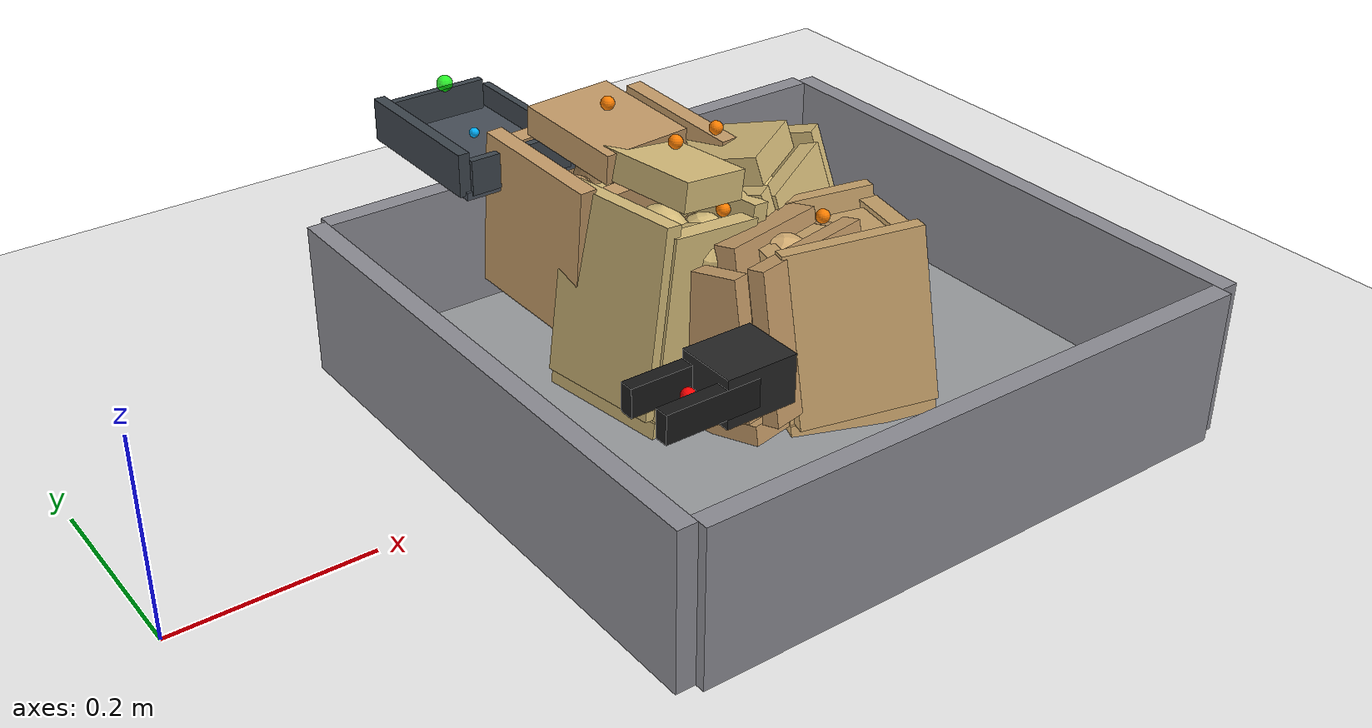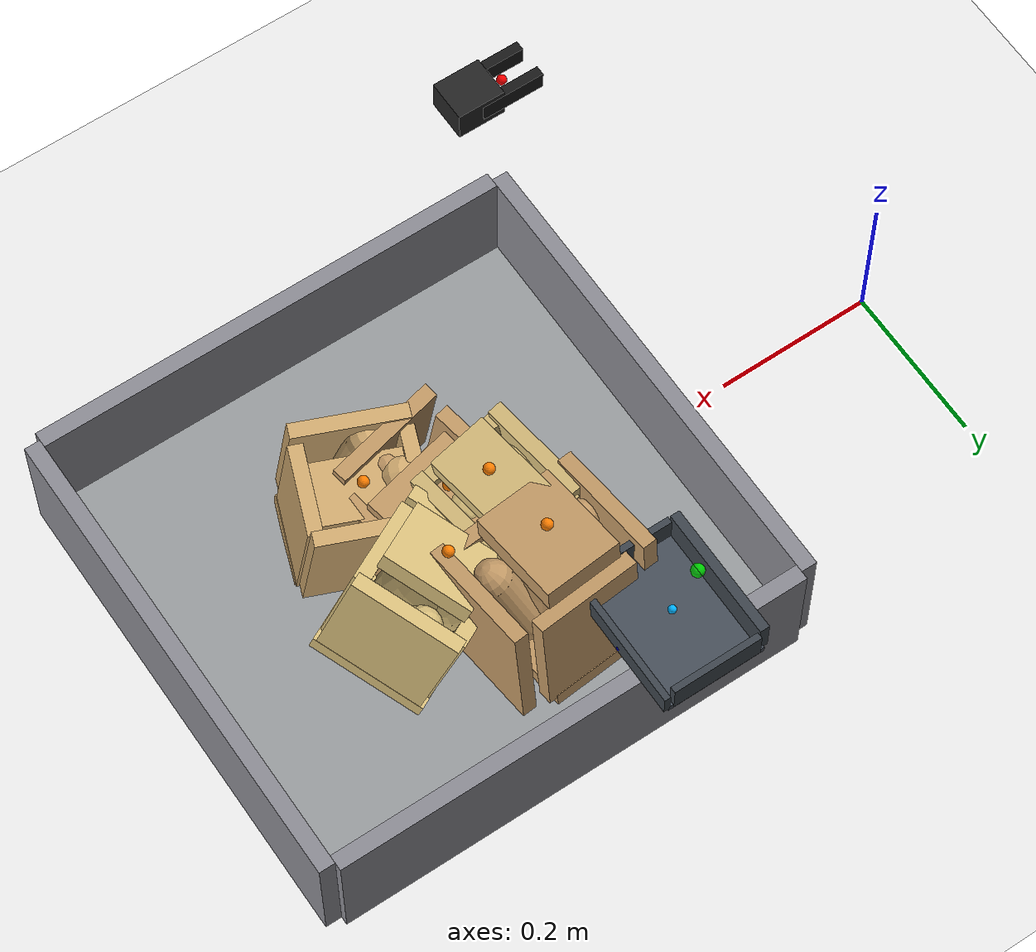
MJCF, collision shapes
<mujoco model="side_bulged_unstable_partially_buried_ep0_try0">
  <compiler angle="radian" coordinate="local" inertiafromgeom="true" meshdir="D:/Michael/2025/01.Research/01.Parceldetection/16.Pybullet/bullet3-master (1)/bullet3-master/examples/pybullet/examples/DeformableTest/Sackcodex2/object"/>
  <option timestep="0.002" gravity="0 0 -9.81" integrator="implicitfast" iterations="100" tolerance="1e-8"/>
  <size memory="768M" nconmax="12000"/>

  <visual>
    <global azimuth="128" elevation="-20"/>
    <headlight ambient="0.34 0.34 0.34" diffuse="0.78 0.78 0.78" specular="0.15 0.15 0.15"/>
    <rgba haze="0.11 0.13 0.18 1"/>
  </visual>

  <default>
    <geom condim="4" friction="1.15 0.03 0.01" margin="0.003" solimp="0.93 0.98 0.003" solref="0.012 1"/>
    <joint damping="1.2" armature="0.002"/>
    <position kp="2500" forcelimited="true" forcerange="-420 420"/>
    <motor ctrllimited="true"/>
  </default>

  <asset>
    <mesh name="sack_0_visual_mesh" file="sack9.obj" scale="0.0769 0.0769 0.0821"/>
    <mesh name="sack_1_visual_mesh" file="sack.obj" scale="0.0708 0.0708 0.0721"/>
    <mesh name="sack_2_visual_mesh" file="sack9.obj" scale="0.0695 0.0695 0.0729"/>
    <mesh name="sack_3_visual_mesh" file="sack9.obj" scale="0.0719 0.0719 0.0762"/>
    <mesh name="sack_4_visual_mesh" file="sack6Apply.obj" scale="0.0739 0.0739 0.0789"/>
  </asset>

  <worldbody>
    <light name="key" pos="0.85 0.15 1.8" dir="-0.2 -0.1 -1" directional="true"/>
    <geom name="floor" type="plane" size="2 2 0.1" rgba="0.93 0.93 0.93 1"/>
    <geom name="work_pad" type="box" pos="0.62 0 0.012" size="0.30 0.30 0.012" rgba="0.60 0.61 0.62 1" friction="1.4 0.05 0.01"/>
    <geom name="corral_front" type="box" pos="0.93 0.00 0.08" size="0.010 0.30 0.08" rgba="0.55 0.55 0.58 0.22" friction="1.0 0.03 0.01"/>
    <geom name="corral_back" type="box" pos="0.31 0.00 0.08" size="0.010 0.30 0.08" rgba="0.55 0.55 0.58 0.18" friction="1.0 0.03 0.01"/>
    <geom name="corral_left" type="box" pos="0.62 0.30 0.08" size="0.30 0.010 0.08" rgba="0.55 0.55 0.58 0.14" friction="1.0 0.03 0.01"/>
    <geom name="corral_right" type="box" pos="0.62 -0.30 0.08" size="0.30 0.010 0.08" rgba="0.55 0.55 0.58 0.14" friction="1.0 0.03 0.01"/>
    <camera name="overview" pos="1.22 0.00 0.92" xyaxes="0 1 0 -0.46 0 0.88"/>

    <body name="gripper_mocap" mocap="true" pos="0.36 -0.33 0.30" quat="0.707107 0 -0.707107 0"/>
    <body name="scoop_mocap" mocap="true" pos="0.42 0.28 0.20" quat="1 0 0 0"/>

    <body name="gripper_ctrl_base" pos="0.36 -0.33 0.30">
      <inertial pos="0 0 0" mass="0.001" diaginertia="1e-6 1e-6 1e-6"/>
      <joint name="gripper_ctrl_x" type="slide" axis="1 0 0" limited="true" range="0.20 1.00"/>
      <body name="gripper_ctrl_y_body">
        <inertial pos="0 0 0" mass="0.001" diaginertia="1e-6 1e-6 1e-6"/>
        <joint name="gripper_ctrl_y" type="slide" axis="0 1 0" limited="true" range="-0.60 0.60"/>
        <body name="gripper_ctrl_z_body">
          <inertial pos="0 0 0" mass="0.001" diaginertia="1e-6 1e-6 1e-6"/>
          <joint name="gripper_ctrl_z" type="slide" axis="0 0 1" limited="true" range="0.04 0.70"/>
          <body name="gripper_ctrl_yaw_body">
            <inertial pos="0 0 0" mass="0.001" diaginertia="1e-6 1e-6 1e-6"/>
            <joint name="gripper_ctrl_yaw" type="hinge" axis="0 0 1" limited="true" range="-3.1416 3.1416"/>
            <body name="gripper_ctrl_pitch_body">
              <inertial pos="0 0 0" mass="0.001" diaginertia="1e-6 1e-6 1e-6"/>
              <joint name="gripper_ctrl_pitch" type="hinge" axis="0 1 0" limited="true" range="-3.1416 3.1416"/>
              <body name="gripper_ctrl_roll_body">
                <inertial pos="0 0 0" mass="0.001" diaginertia="1e-6 1e-6 1e-6"/>
                <joint name="gripper_ctrl_roll" type="hinge" axis="1 0 0" limited="true" range="-3.1416 3.1416"/>
              </body>
            </body>
          </body>
        </body>
      </body>
    </body>

    <body name="scoop_ctrl_base" pos="0.42 0.28 0.20">
      <inertial pos="0 0 0" mass="0.001" diaginertia="1e-6 1e-6 1e-6"/>
      <joint name="scoop_ctrl_x" type="slide" axis="1 0 0" limited="true" range="0.20 1.00"/>
      <body name="scoop_ctrl_y_body">
        <inertial pos="0 0 0" mass="0.001" diaginertia="1e-6 1e-6 1e-6"/>
        <joint name="scoop_ctrl_y" type="slide" axis="0 1 0" limited="true" range="-0.60 0.60"/>
        <body name="scoop_ctrl_z_body">
          <inertial pos="0 0 0" mass="0.001" diaginertia="1e-6 1e-6 1e-6"/>
          <joint name="scoop_ctrl_z" type="slide" axis="0 0 1" limited="true" range="0.04 0.70"/>
          <body name="scoop_ctrl_yaw_body">
            <inertial pos="0 0 0" mass="0.001" diaginertia="1e-6 1e-6 1e-6"/>
            <joint name="scoop_ctrl_yaw" type="hinge" axis="0 0 1" limited="true" range="-3.1416 3.1416"/>
            <body name="scoop_ctrl_pitch_body">
              <inertial pos="0 0 0" mass="0.001" diaginertia="1e-6 1e-6 1e-6"/>
              <joint name="scoop_ctrl_pitch" type="hinge" axis="0 1 0" limited="true" range="-3.1416 3.1416"/>
              <body name="scoop_ctrl_roll_body">
                <inertial pos="0 0 0" mass="0.001" diaginertia="1e-6 1e-6 1e-6"/>
                <joint name="scoop_ctrl_roll" type="hinge" axis="1 0 0" limited="true" range="-3.1416 3.1416"/>
              </body>
            </body>
          </body>
        </body>
      </body>
    </body>

    <body name="gripper_tool" pos="0.36 -0.33 0.30" quat="0.707107 0 -0.707107 0">
      <freejoint name="gripper_tool_free"/>
      <inertial pos="0 0 0.04" mass="0.08" diaginertia="0.0002 0.0002 0.0002"/>
      <geom name="gripper_palm" type="box" pos="0 0 0.030" size="0.020 0.026 0.030" rgba="0.14 0.14 0.14 1"/>
      <body name="left_finger_body" pos="0 0 0.072">
        <joint name="left_finger_slide" type="slide" axis="0 1 0" limited="true" range="0.010 0.040" damping="12"/>
        <geom name="left_finger_geom" type="box" pos="0 0.020 0" size="0.012 0.006 0.040" rgba="0.10 0.10 0.10 1" friction="2.2 0.05 0.01"/>
      </body>
      <body name="right_finger_body" pos="0 0 0.072">
        <joint name="right_finger_slide" type="slide" axis="0 -1 0" limited="true" range="0.010 0.040" damping="12"/>
        <geom name="right_finger_geom" type="box" pos="0 -0.020 0" size="0.012 0.006 0.040" rgba="0.10 0.10 0.10 1" friction="2.2 0.05 0.01"/>
      </body>
      <site name="gripper_pinch_site" pos="0 0 0.074" size="0.006" rgba="1 0 0 1"/>
    </body>

    <body name="scoop_tool" pos="0.42 0.28 0.20" quat="1 0 0 0">
      <freejoint name="scoop_tool_free"/>
      <inertial pos="0 0 0.02" mass="0.10" diaginertia="0.0003 0.0003 0.0003"/>
      <geom name="scoop_plate" type="box" pos="0.062 0 0" size="0.062 0.085 0.004" rgba="0.28 0.31 0.35 1" friction="1.7 0.05 0.01"/>
      <geom name="scoop_lip" type="box" pos="0.126 0 0.014" size="0.004 0.085 0.014" rgba="0.24 0.27 0.30 1" friction="1.7 0.05 0.01"/>
      <geom name="scoop_left_rail" type="box" pos="0.062 0.082 0.018" size="0.056 0.004 0.018" rgba="0.24 0.27 0.30 1"/>
      <geom name="scoop_right_rail" type="box" pos="0.062 -0.082 0.018" size="0.056 0.004 0.018" rgba="0.24 0.27 0.30 1"/>
      <geom name="scoop_backstop" type="box" pos="0.000 0 0.022" size="0.006 0.082 0.022" rgba="0.24 0.27 0.30 1"/>
      <site name="scoop_tip_site" pos="0.126 0 0.005" size="0.005" rgba="0 0 1 1"/>
      <site name="scoop_center_site" pos="0.060 0 0.020" size="0.005" rgba="0 0.7 1 1"/>
      <site name="score_overlay_site" pos="0.030 0 0.080" size="0.008" rgba="0 1 0 0.8"/>
    </body>

    <body name="sack_0" pos="0.5937 -0.0050 0.1061" euler="-0.1741 -0.0154 0.2225">
      <freejoint name="sack_0_free"/>

      <geom name="sack_0_visual" type="mesh" mesh="sack_0_visual_mesh" rgba="0.760 0.600 0.400 0.92" contype="0" conaffinity="0"/>
      <site name="sack_0_center_site" pos="0 0 0.000" size="0.006" rgba="0 1 0 1"/>
      <site name="sack_0_top_site" pos="0 0.0060 0.1053" size="0.007" rgba="1 0.5 0 1"/>
      <site name="sack_0_side_site" pos="0.0140 0.0586 0.018" size="0.007" rgba="1 0.8 0 1"/>

      <geom name="sack_0_core_geom" type="ellipsoid" pos="0 0 0.0058" size="0.0451 0.0355 0.0795" mass="0.9458" rgba="0.760 0.600 0.400 0.12" friction="1.0 0.03 0.01"/>
      <geom name="sack_0_core_front" type="capsule" fromto="-0.0060 0 -0.0200 0.0590 0 0.0600" size="0.0309" mass="0.2252" rgba="0.760 0.600 0.400 0.10"/>
      <geom name="sack_0_core_left" type="capsule" fromto="-0.008 0.0426 -0.010 0.018 0.0606 0.060" size="0.0242" mass="0.4054" rgba="0.760 0.600 0.400 0.10"/>
      <geom name="sack_0_core_right" type="capsule" fromto="-0.006 -0.0426 -0.008 0.020 -0.0626 0.054" size="0.0223" mass="0.4054" rgba="0.760 0.600 0.400 0.10"/>

      <body name="sack_0_bottom_support_proxy_body" pos="0 -0.0085 -0.0783">
        <joint name="sack_0_bottom_x" type="slide" axis="1 0 0" limited="true" range="-0.012 0.012" damping="18" stiffness="487.6"/>
        <joint name="sack_0_bottom_y" type="slide" axis="0 1 0" limited="true" range="-0.012 0.012" damping="18" stiffness="487.6"/>
        <joint name="sack_0_bottom_z" type="slide" axis="0 0 1" limited="true" range="-0.008 0.020" damping="24" stiffness="600.4"/>
        <geom name="sack_0_bottom_support_proxy" type="box" size="0.0759 0.0646 0.0100" mass="0.1802" rgba="0.760 0.600 0.400 0.34" friction="1.55 0.05 0.01"/>
      </body>

      <body name="sack_0_top_grasp_proxy_body" pos="0.0140 0.0060 0.0753">
        <joint name="sack_0_top_x" type="slide" axis="1 0 0" limited="true" range="-0.018 0.018" damping="12" stiffness="187.4"/>
        <joint name="sack_0_top_y" type="slide" axis="0 1 0" limited="true" range="-0.018 0.018" damping="12" stiffness="187.4"/>
        <joint name="sack_0_top_z" type="slide" axis="0 0 1" limited="true" range="-0.040 0.010" damping="14" stiffness="139.2"/>
        <geom name="sack_0_top_grasp_proxy" type="box" size="0.0599 0.0486 0.0150" mass="0.1351" rgba="0.760 0.600 0.400 0.26" friction="2.2 0.05 0.01"/>
      </body>

      <body name="sack_0_left_side_proxy_body" pos="0 0.0912 0.010">
        <joint name="sack_0_left_side_slide" type="slide" axis="0 -1 0" limited="true" range="-0.028 0.016" damping="16" stiffness="247.8"/>
        <geom name="sack_0_left_side_proxy" type="box" size="0.0719 0.0090 0.0763" mass="0.1351" rgba="0.760 0.600 0.400 0.24"/>
      </body>

      <body name="sack_0_right_side_proxy_body" pos="0 -0.0872 0.010">
        <joint name="sack_0_right_side_slide" type="slide" axis="0 1 0" limited="true" range="-0.028 0.016" damping="16" stiffness="229.6"/>
        <geom name="sack_0_right_side_proxy" type="box" size="0.0719 0.0090 0.0763" mass="0.1351" rgba="0.760 0.600 0.400 0.24"/>
      </body>

      <body name="sack_0_front_proxy_body" pos="0.0799 0 0.000">
        <joint name="sack_0_front_slide" type="slide" axis="-1 0 0" limited="true" range="-0.022 0.012" damping="15" stiffness="233.8"/>
        <geom name="sack_0_front_support_proxy" type="box" size="0.0090 0.0646 0.0743" mass="0.1126" rgba="0.760 0.600 0.400 0.22"/>
      </body>

      <body name="sack_0_back_proxy_body" pos="-0.0659 0 0.000">
        <joint name="sack_0_back_slide" type="slide" axis="1 0 0" limited="true" range="-0.022 0.012" damping="15" stiffness="215.6"/>
        <geom name="sack_0_back_support_proxy" type="box" size="0.0090 0.0646 0.0743" mass="0.1126" rgba="0.760 0.600 0.400 0.22"/>
      </body>

      <body name="sack_0_shape_proxy_body" pos="0.0084 0.0346 0.0308">
        <joint name="sack_0_bulge_y" type="slide" axis="0 1 0" limited="true" range="-0.020 0.020" damping="8" stiffness="81.6"/>
        <joint name="sack_0_bulge_z" type="slide" axis="0 0 1" limited="true" range="-0.014 0.028" damping="8" stiffness="86.2"/>
        <geom name="sack_0_shape_proxy" type="ellipsoid" size="0.0202 0.0165 0.0262" mass="0.0901" rgba="0.760 0.600 0.400 0.28"/>
      </body>
    </body>

    <body name="sack_1" pos="0.6652 -0.0597 0.1110" euler="-0.1731 -0.0368 2.7857">
      <freejoint name="sack_1_free"/>

      <geom name="sack_1_visual" type="mesh" mesh="sack_1_visual_mesh" rgba="0.820 0.670 0.440 0.92" contype="0" conaffinity="0"/>
      <site name="sack_1_center_site" pos="0 0 0.000" size="0.006" rgba="0 1 0 1"/>
      <site name="sack_1_top_site" pos="0 -0.0060 0.0946" size="0.007" rgba="1 0.5 0 1"/>
      <site name="sack_1_side_site" pos="0.0000 -0.0472 0.018" size="0.007" rgba="1 0.8 0 1"/>

      <geom name="sack_1_core_geom" type="ellipsoid" pos="0 0 0.0057" size="0.0449 0.0347 0.0664" mass="0.7136" rgba="0.820 0.670 0.440 0.12" friction="1.0 0.03 0.01"/>
      <geom name="sack_1_core_front" type="capsule" fromto="-0.0200 0 -0.0200 0.0450 0 0.0600" size="0.0293" mass="0.1699" rgba="0.820 0.670 0.440 0.10"/>
      <geom name="sack_1_core_left" type="capsule" fromto="-0.008 0.0279 -0.010 0.018 0.0459 0.060" size="0.0241" mass="0.3058" rgba="0.820 0.670 0.440 0.10"/>
      <geom name="sack_1_core_right" type="capsule" fromto="-0.006 -0.0279 -0.008 0.020 -0.0479 0.054" size="0.0221" mass="0.3058" rgba="0.820 0.670 0.440 0.10"/>

      <body name="sack_1_bottom_support_proxy_body" pos="0 0.0031 -0.0890">
        <joint name="sack_1_bottom_x" type="slide" axis="1 0 0" limited="true" range="-0.012 0.012" damping="18" stiffness="439.7"/>
        <joint name="sack_1_bottom_y" type="slide" axis="0 1 0" limited="true" range="-0.012 0.012" damping="18" stiffness="439.7"/>
        <joint name="sack_1_bottom_z" type="slide" axis="0 0 1" limited="true" range="-0.008 0.020" damping="24" stiffness="541.9"/>
        <geom name="sack_1_bottom_support_proxy" type="box" size="0.0723 0.0532 0.0100" mass="0.1359" rgba="0.820 0.670 0.440 0.34" friction="1.55 0.05 0.01"/>
      </body>

      <body name="sack_1_top_grasp_proxy_body" pos="0.0000 -0.0060 0.0646">
        <joint name="sack_1_top_x" type="slide" axis="1 0 0" limited="true" range="-0.018 0.018" damping="12" stiffness="168.8"/>
        <joint name="sack_1_top_y" type="slide" axis="0 1 0" limited="true" range="-0.018 0.018" damping="12" stiffness="168.8"/>
        <joint name="sack_1_top_z" type="slide" axis="0 0 1" limited="true" range="-0.040 0.010" damping="14" stiffness="123.2"/>
        <geom name="sack_1_top_grasp_proxy" type="box" size="0.0563 0.0372 0.0150" mass="0.1019" rgba="0.820 0.670 0.440 0.26" friction="2.2 0.05 0.01"/>
      </body>

      <body name="sack_1_left_side_proxy_body" pos="0 0.0652 0.010">
        <joint name="sack_1_left_side_slide" type="slide" axis="0 -1 0" limited="true" range="-0.028 0.016" damping="16" stiffness="215.5"/>
        <geom name="sack_1_left_side_proxy" type="box" size="0.0683 0.0090 0.0870" mass="0.1019" rgba="0.820 0.670 0.440 0.24"/>
      </body>

      <body name="sack_1_right_side_proxy_body" pos="0 -0.0612 0.010">
        <joint name="sack_1_right_side_slide" type="slide" axis="0 1 0" limited="true" range="-0.028 0.016" damping="16" stiffness="200.0"/>
        <geom name="sack_1_right_side_proxy" type="box" size="0.0683 0.0090 0.0870" mass="0.1019" rgba="0.820 0.670 0.440 0.24"/>
      </body>

      <body name="sack_1_front_proxy_body" pos="0.0623 0 0.000">
        <joint name="sack_1_front_slide" type="slide" axis="-1 0 0" limited="true" range="-0.022 0.012" damping="15" stiffness="209.9"/>
        <geom name="sack_1_front_support_proxy" type="box" size="0.0090 0.0532 0.0850" mass="0.0849" rgba="0.820 0.670 0.440 0.22"/>
      </body>

      <body name="sack_1_back_proxy_body" pos="-0.0623 0 0.000">
        <joint name="sack_1_back_slide" type="slide" axis="1 0 0" limited="true" range="-0.022 0.012" damping="15" stiffness="194.3"/>
        <geom name="sack_1_back_support_proxy" type="box" size="0.0090 0.0532 0.0850" mass="0.0849" rgba="0.820 0.670 0.440 0.22"/>
      </body>

      <body name="sack_1_shape_proxy_body" pos="0.0000 -0.0199 0.0468">
        <joint name="sack_1_bulge_y" type="slide" axis="0 1 0" limited="true" range="-0.020 0.020" damping="8" stiffness="113.5"/>
        <joint name="sack_1_bulge_z" type="slide" axis="0 0 1" limited="true" range="-0.014 0.028" damping="8" stiffness="110.1"/>
        <geom name="sack_1_shape_proxy" type="ellipsoid" size="0.0201 0.0162 0.0262" mass="0.0680" rgba="0.820 0.670 0.440 0.28"/>
      </body>
    </body>

    <body name="sack_2" pos="0.5336 0.0501 0.1199" euler="-0.0263 0.1448 -1.4299">
      <freejoint name="sack_2_free"/>

      <geom name="sack_2_visual" type="mesh" mesh="sack_2_visual_mesh" rgba="0.840 0.740 0.480 0.92" contype="0" conaffinity="0"/>
      <site name="sack_2_center_site" pos="0 0 0.000" size="0.006" rgba="0 1 0 1"/>
      <site name="sack_2_top_site" pos="0 0.0060 0.1545" size="0.007" rgba="1 0.5 0 1"/>
      <site name="sack_2_side_site" pos="0.0000 0.0474 0.018" size="0.007" rgba="1 0.8 0 1"/>

      <geom name="sack_2_core_geom" type="ellipsoid" pos="0 0 0.0059" size="0.0496 0.0410 0.0875" mass="1.0752" rgba="0.840 0.740 0.480 0.12" friction="1.0 0.03 0.01"/>
      <geom name="sack_2_core_front" type="capsule" fromto="-0.0200 0 -0.0200 0.0450 0 0.0600" size="0.0303" mass="0.2560" rgba="0.840 0.740 0.480 0.10"/>
      <geom name="sack_2_core_left" type="capsule" fromto="-0.008 0.0216 -0.010 0.018 0.0396 0.060" size="0.0240" mass="0.4608" rgba="0.840 0.740 0.480 0.10"/>
      <geom name="sack_2_core_right" type="capsule" fromto="-0.006 -0.0216 -0.008 0.020 -0.0416 0.054" size="0.0220" mass="0.4608" rgba="0.840 0.740 0.480 0.10"/>

      <body name="sack_2_bottom_support_proxy_body" pos="0 -0.0024 -0.0987">
        <joint name="sack_2_bottom_x" type="slide" axis="1 0 0" limited="true" range="-0.012 0.012" damping="18" stiffness="470.1"/>
        <joint name="sack_2_bottom_y" type="slide" axis="0 1 0" limited="true" range="-0.012 0.012" damping="18" stiffness="470.1"/>
        <joint name="sack_2_bottom_z" type="slide" axis="0 0 1" limited="true" range="-0.008 0.020" damping="24" stiffness="579.0"/>
        <geom name="sack_2_bottom_support_proxy" type="box" size="0.0712 0.0534 0.0100" mass="0.2048" rgba="0.840 0.740 0.480 0.34" friction="1.55 0.05 0.01"/>
      </body>

      <body name="sack_2_top_grasp_proxy_body" pos="0.0000 0.0060 0.1245">
        <joint name="sack_2_top_x" type="slide" axis="1 0 0" limited="true" range="-0.018 0.018" damping="12" stiffness="180.6"/>
        <joint name="sack_2_top_y" type="slide" axis="0 1 0" limited="true" range="-0.018 0.018" damping="12" stiffness="180.6"/>
        <joint name="sack_2_top_z" type="slide" axis="0 0 1" limited="true" range="-0.040 0.010" damping="14" stiffness="133.4"/>
        <geom name="sack_2_top_grasp_proxy" type="box" size="0.0552 0.0374 0.0150" mass="0.1536" rgba="0.840 0.740 0.480 0.26" friction="2.2 0.05 0.01"/>
      </body>

      <body name="sack_2_left_side_proxy_body" pos="0 0.0590 0.010">
        <joint name="sack_2_left_side_slide" type="slide" axis="0 -1 0" limited="true" range="-0.028 0.016" damping="16" stiffness="236.5"/>
        <geom name="sack_2_left_side_proxy" type="box" size="0.0672 0.0090 0.0967" mass="0.1536" rgba="0.840 0.740 0.480 0.24"/>
      </body>

      <body name="sack_2_right_side_proxy_body" pos="0 -0.0550 0.010">
        <joint name="sack_2_right_side_slide" type="slide" axis="0 1 0" limited="true" range="-0.028 0.016" damping="16" stiffness="219.3"/>
        <geom name="sack_2_right_side_proxy" type="box" size="0.0672 0.0090 0.0967" mass="0.1536" rgba="0.840 0.740 0.480 0.24"/>
      </body>

      <body name="sack_2_front_proxy_body" pos="0.0612 0 0.000">
        <joint name="sack_2_front_slide" type="slide" axis="-1 0 0" limited="true" range="-0.022 0.012" damping="15" stiffness="225.0"/>
        <geom name="sack_2_front_support_proxy" type="box" size="0.0090 0.0534 0.0947" mass="0.1280" rgba="0.840 0.740 0.480 0.22"/>
      </body>

      <body name="sack_2_back_proxy_body" pos="-0.0612 0 0.000">
        <joint name="sack_2_back_slide" type="slide" axis="1 0 0" limited="true" range="-0.022 0.012" damping="15" stiffness="207.8"/>
        <geom name="sack_2_back_support_proxy" type="box" size="0.0090 0.0534 0.0947" mass="0.1280" rgba="0.840 0.740 0.480 0.22"/>
      </body>

      <body name="sack_2_shape_proxy_body" pos="0.0000 0.0136 0.0366">
        <joint name="sack_2_bulge_y" type="slide" axis="0 1 0" limited="true" range="-0.020 0.020" damping="8" stiffness="93.3"/>
        <joint name="sack_2_bulge_z" type="slide" axis="0 0 1" limited="true" range="-0.014 0.028" damping="8" stiffness="95.0"/>
        <geom name="sack_2_shape_proxy" type="ellipsoid" size="0.0200 0.0160 0.0260" mass="0.1024" rgba="0.840 0.740 0.480 0.28"/>
      </body>
    </body>

    <body name="sack_3" pos="0.6775 0.0805 0.1237" euler="-0.1910 -0.2114 2.0297">
      <freejoint name="sack_3_free"/>

      <geom name="sack_3_visual" type="mesh" mesh="sack_3_visual_mesh" rgba="0.840 0.740 0.480 0.92" contype="0" conaffinity="0"/>
      <site name="sack_3_center_site" pos="0 0 0.000" size="0.006" rgba="0 1 0 1"/>
      <site name="sack_3_top_site" pos="0 0.0060 0.1288" size="0.007" rgba="1 0.5 0 1"/>
      <site name="sack_3_side_site" pos="0.0000 0.0482 0.018" size="0.007" rgba="1 0.8 0 1"/>

      <geom name="sack_3_core_geom" type="ellipsoid" pos="0 0 0.0059" size="0.0499 0.0414 0.0882" mass="1.0915" rgba="0.840 0.740 0.480 0.12" friction="1.0 0.03 0.01"/>
      <geom name="sack_3_core_front" type="capsule" fromto="-0.0200 0 -0.0200 0.0450 0 0.0600" size="0.0306" mass="0.2599" rgba="0.840 0.740 0.480 0.10"/>
      <geom name="sack_3_core_left" type="capsule" fromto="-0.008 0.0266 -0.010 0.018 0.0446 0.060" size="0.0241" mass="0.4678" rgba="0.840 0.740 0.480 0.10"/>
      <geom name="sack_3_core_right" type="capsule" fromto="-0.006 -0.0266 -0.008 0.020 -0.0466 0.054" size="0.0221" mass="0.4678" rgba="0.840 0.740 0.480 0.10"/>

      <body name="sack_3_bottom_support_proxy_body" pos="0 -0.0148 -0.0819">
        <joint name="sack_3_bottom_x" type="slide" axis="1 0 0" limited="true" range="-0.012 0.012" damping="18" stiffness="479.0"/>
        <joint name="sack_3_bottom_y" type="slide" axis="0 1 0" limited="true" range="-0.012 0.012" damping="18" stiffness="479.0"/>
        <joint name="sack_3_bottom_z" type="slide" axis="0 0 1" limited="true" range="-0.008 0.020" damping="24" stiffness="589.9"/>
        <geom name="sack_3_bottom_support_proxy" type="box" size="0.0715 0.0542 0.0100" mass="0.2079" rgba="0.840 0.740 0.480 0.34" friction="1.55 0.05 0.01"/>
      </body>

      <body name="sack_3_top_grasp_proxy_body" pos="0.0000 0.0060 0.0988">
        <joint name="sack_3_top_x" type="slide" axis="1 0 0" limited="true" range="-0.018 0.018" damping="12" stiffness="184.0"/>
        <joint name="sack_3_top_y" type="slide" axis="0 1 0" limited="true" range="-0.018 0.018" damping="12" stiffness="184.0"/>
        <joint name="sack_3_top_z" type="slide" axis="0 0 1" limited="true" range="-0.040 0.010" damping="14" stiffness="136.3"/>
        <geom name="sack_3_top_grasp_proxy" type="box" size="0.0555 0.0382 0.0150" mass="0.1559" rgba="0.840 0.740 0.480 0.26" friction="2.2 0.05 0.01"/>
      </body>

      <body name="sack_3_left_side_proxy_body" pos="0 0.0648 0.010">
        <joint name="sack_3_left_side_slide" type="slide" axis="0 -1 0" limited="true" range="-0.028 0.016" damping="16" stiffness="242.4"/>
        <geom name="sack_3_left_side_proxy" type="box" size="0.0675 0.0090 0.0799" mass="0.1559" rgba="0.840 0.740 0.480 0.24"/>
      </body>

      <body name="sack_3_right_side_proxy_body" pos="0 -0.0608 0.010">
        <joint name="sack_3_right_side_slide" type="slide" axis="0 1 0" limited="true" range="-0.028 0.016" damping="16" stiffness="224.7"/>
        <geom name="sack_3_right_side_proxy" type="box" size="0.0675 0.0090 0.0799" mass="0.1559" rgba="0.840 0.740 0.480 0.24"/>
      </body>

      <body name="sack_3_front_proxy_body" pos="0.0615 0 0.000">
        <joint name="sack_3_front_slide" type="slide" axis="-1 0 0" limited="true" range="-0.022 0.012" damping="15" stiffness="229.5"/>
        <geom name="sack_3_front_support_proxy" type="box" size="0.0090 0.0542 0.0779" mass="0.1299" rgba="0.840 0.740 0.480 0.22"/>
      </body>

      <body name="sack_3_back_proxy_body" pos="-0.0615 0 0.000">
        <joint name="sack_3_back_slide" type="slide" axis="1 0 0" limited="true" range="-0.022 0.012" damping="15" stiffness="211.8"/>
        <geom name="sack_3_back_support_proxy" type="box" size="0.0090 0.0542 0.0779" mass="0.1299" rgba="0.840 0.740 0.480 0.22"/>
      </body>

      <body name="sack_3_shape_proxy_body" pos="0.0000 0.0186 0.0337">
        <joint name="sack_3_bulge_y" type="slide" axis="0 1 0" limited="true" range="-0.020 0.020" damping="8" stiffness="87.3"/>
        <joint name="sack_3_bulge_z" type="slide" axis="0 0 1" limited="true" range="-0.014 0.028" damping="8" stiffness="90.5"/>
        <geom name="sack_3_shape_proxy" type="ellipsoid" size="0.0201 0.0161 0.0261" mass="0.1040" rgba="0.840 0.740 0.480 0.28"/>
      </body>
    </body>

    <body name="sack_4" pos="0.5549 0.1593 0.1519" euler="0.0874 0.0111 -1.4866">
      <freejoint name="sack_4_free"/>

      <geom name="sack_4_visual" type="mesh" mesh="sack_4_visual_mesh" rgba="0.760 0.600 0.400 0.92" contype="0" conaffinity="0"/>
      <site name="sack_4_center_site" pos="0 0 0.000" size="0.006" rgba="0 1 0 1"/>
      <site name="sack_4_top_site" pos="0 -0.0060 0.1290" size="0.007" rgba="1 0.5 0 1"/>
      <site name="sack_4_side_site" pos="0.0000 -0.0585 0.018" size="0.007" rgba="1 0.8 0 1"/>

      <geom name="sack_4_core_geom" type="ellipsoid" pos="0 0 0.0059" size="0.0451 0.0355 0.0794" mass="1.0027" rgba="0.760 0.600 0.400 0.12" friction="1.0 0.03 0.01"/>
      <geom name="sack_4_core_front" type="capsule" fromto="-0.0200 0 -0.0200 0.0450 0 0.0600" size="0.0309" mass="0.2387" rgba="0.760 0.600 0.400 0.10"/>
      <geom name="sack_4_core_left" type="capsule" fromto="-0.008 0.0409 -0.010 0.018 0.0589 0.060" size="0.0242" mass="0.4297" rgba="0.760 0.600 0.400 0.10"/>
      <geom name="sack_4_core_right" type="capsule" fromto="-0.006 -0.0409 -0.008 0.020 -0.0609 0.054" size="0.0223" mass="0.4297" rgba="0.760 0.600 0.400 0.10"/>

      <body name="sack_4_bottom_support_proxy_body" pos="0 -0.0099 -0.0847">
        <joint name="sack_4_bottom_x" type="slide" axis="1 0 0" limited="true" range="-0.012 0.012" damping="18" stiffness="487.4"/>
        <joint name="sack_4_bottom_y" type="slide" axis="0 1 0" limited="true" range="-0.012 0.012" damping="18" stiffness="487.4"/>
        <joint name="sack_4_bottom_z" type="slide" axis="0 0 1" limited="true" range="-0.008 0.020" damping="24" stiffness="600.2"/>
        <geom name="sack_4_bottom_support_proxy" type="box" size="0.0759 0.0645 0.0100" mass="0.1910" rgba="0.760 0.600 0.400 0.34" friction="1.55 0.05 0.01"/>
      </body>

      <body name="sack_4_top_grasp_proxy_body" pos="0.0000 -0.0060 0.0990">
        <joint name="sack_4_top_x" type="slide" axis="1 0 0" limited="true" range="-0.018 0.018" damping="12" stiffness="187.3"/>
        <joint name="sack_4_top_y" type="slide" axis="0 1 0" limited="true" range="-0.018 0.018" damping="12" stiffness="187.3"/>
        <joint name="sack_4_top_z" type="slide" axis="0 0 1" limited="true" range="-0.040 0.010" damping="14" stiffness="139.1"/>
        <geom name="sack_4_top_grasp_proxy" type="box" size="0.0599 0.0485 0.0150" mass="0.1432" rgba="0.760 0.600 0.400 0.26" friction="2.2 0.05 0.01"/>
      </body>

      <body name="sack_4_left_side_proxy_body" pos="0 0.0895 0.010">
        <joint name="sack_4_left_side_slide" type="slide" axis="0 -1 0" limited="true" range="-0.028 0.016" damping="16" stiffness="247.9"/>
        <geom name="sack_4_left_side_proxy" type="box" size="0.0719 0.0090 0.0827" mass="0.1432" rgba="0.760 0.600 0.400 0.24"/>
      </body>

      <body name="sack_4_right_side_proxy_body" pos="0 -0.0855 0.010">
        <joint name="sack_4_right_side_slide" type="slide" axis="0 1 0" limited="true" range="-0.028 0.016" damping="16" stiffness="229.8"/>
        <geom name="sack_4_right_side_proxy" type="box" size="0.0719 0.0090 0.0827" mass="0.1432" rgba="0.760 0.600 0.400 0.24"/>
      </body>

      <body name="sack_4_front_proxy_body" pos="0.0659 0 0.000">
        <joint name="sack_4_front_slide" type="slide" axis="-1 0 0" limited="true" range="-0.022 0.012" damping="15" stiffness="233.7"/>
        <geom name="sack_4_front_support_proxy" type="box" size="0.0090 0.0645 0.0807" mass="0.1194" rgba="0.760 0.600 0.400 0.22"/>
      </body>

      <body name="sack_4_back_proxy_body" pos="-0.0659 0 0.000">
        <joint name="sack_4_back_slide" type="slide" axis="1 0 0" limited="true" range="-0.022 0.012" damping="15" stiffness="215.5"/>
        <geom name="sack_4_back_support_proxy" type="box" size="0.0090 0.0645 0.0807" mass="0.1194" rgba="0.760 0.600 0.400 0.22"/>
      </body>

      <body name="sack_4_shape_proxy_body" pos="0.0000 -0.0329 0.0309">
        <joint name="sack_4_bulge_y" type="slide" axis="0 1 0" limited="true" range="-0.020 0.020" damping="8" stiffness="81.7"/>
        <joint name="sack_4_bulge_z" type="slide" axis="0 0 1" limited="true" range="-0.014 0.028" damping="8" stiffness="86.3"/>
        <geom name="sack_4_shape_proxy" type="ellipsoid" size="0.0202 0.0164 0.0261" mass="0.0955" rgba="0.760 0.600 0.400 0.28"/>
      </body>
    </body>
  </worldbody>

  <equality>
    <weld name="gripper_follow" body1="gripper_mocap" body2="gripper_tool" torquescale="400" solref="0.002 1" solimp="0.99 0.999 0.0001"/>
    <weld name="scoop_follow" body1="scoop_mocap" body2="scoop_tool" torquescale="500" solref="0.002 1" solimp="0.99 0.999 0.0001"/>
  </equality>

  <actuator>
    <position name="gripper_ctrl_x_act" joint="gripper_ctrl_x" ctrlrange="0.20 1.00" kp="3500" forcerange="-300 300"/>
    <position name="gripper_ctrl_y_act" joint="gripper_ctrl_y" ctrlrange="-0.60 0.60" kp="3500" forcerange="-300 300"/>
    <position name="gripper_ctrl_z_act" joint="gripper_ctrl_z" ctrlrange="0.04 0.70" kp="3500" forcerange="-300 300"/>
    <position name="gripper_ctrl_yaw_act" joint="gripper_ctrl_yaw" ctrlrange="-3.1416 3.1416" kp="1800" forcerange="-250 250"/>
    <position name="gripper_ctrl_pitch_act" joint="gripper_ctrl_pitch" ctrlrange="-3.1416 3.1416" kp="1800" forcerange="-250 250"/>
    <position name="gripper_ctrl_roll_act" joint="gripper_ctrl_roll" ctrlrange="-3.1416 3.1416" kp="1800" forcerange="-250 250"/>
    <position name="scoop_ctrl_x_act" joint="scoop_ctrl_x" ctrlrange="0.20 1.00" kp="3500" forcerange="-300 300"/>
    <position name="scoop_ctrl_y_act" joint="scoop_ctrl_y" ctrlrange="-0.60 0.60" kp="3500" forcerange="-300 300"/>
    <position name="scoop_ctrl_z_act" joint="scoop_ctrl_z" ctrlrange="0.04 0.70" kp="3500" forcerange="-300 300"/>
    <position name="scoop_ctrl_yaw_act" joint="scoop_ctrl_yaw" ctrlrange="-3.1416 3.1416" kp="1800" forcerange="-250 250"/>
    <position name="scoop_ctrl_pitch_act" joint="scoop_ctrl_pitch" ctrlrange="-3.1416 3.1416" kp="1800" forcerange="-250 250"/>
    <position name="scoop_ctrl_roll_act" joint="scoop_ctrl_roll" ctrlrange="-3.1416 3.1416" kp="1800" forcerange="-250 250"/>
    <position name="left_finger_act" joint="left_finger_slide" ctrlrange="0.010 0.040" kp="2800" forcerange="-220 220"/>
    <position name="right_finger_act" joint="right_finger_slide" ctrlrange="0.010 0.040" kp="2800" forcerange="-220 220"/>
  </actuator>

  <contact>
    <exclude body1="sack_0_top_grasp_proxy_body" body2="sack_0_left_side_proxy_body"/>
    <exclude body1="sack_0_top_grasp_proxy_body" body2="sack_0_right_side_proxy_body"/>
    <exclude body1="sack_1_top_grasp_proxy_body" body2="sack_1_left_side_proxy_body"/>
    <exclude body1="sack_1_top_grasp_proxy_body" body2="sack_1_right_side_proxy_body"/>
    <exclude body1="sack_2_top_grasp_proxy_body" body2="sack_2_left_side_proxy_body"/>
    <exclude body1="sack_2_top_grasp_proxy_body" body2="sack_2_right_side_proxy_body"/>
    <exclude body1="sack_3_top_grasp_proxy_body" body2="sack_3_left_side_proxy_body"/>
    <exclude body1="sack_3_top_grasp_proxy_body" body2="sack_3_right_side_proxy_body"/>
    <exclude body1="sack_4_top_grasp_proxy_body" body2="sack_4_left_side_proxy_body"/>
    <exclude body1="sack_4_top_grasp_proxy_body" body2="sack_4_right_side_proxy_body"/>
  </contact>
</mujoco>
